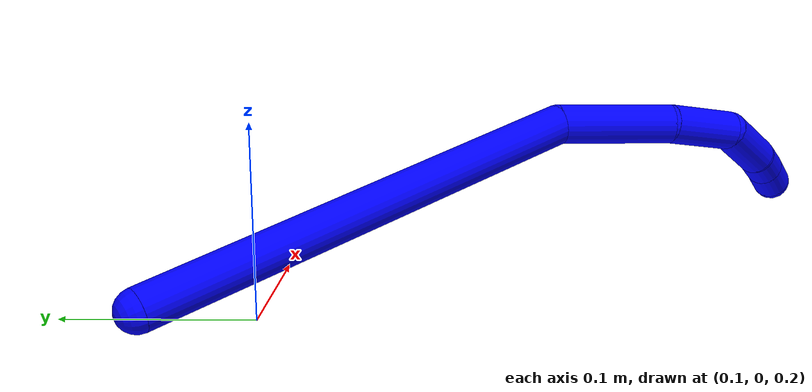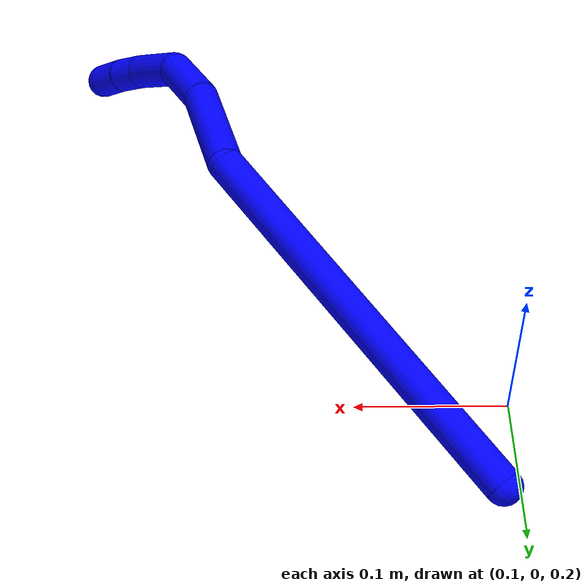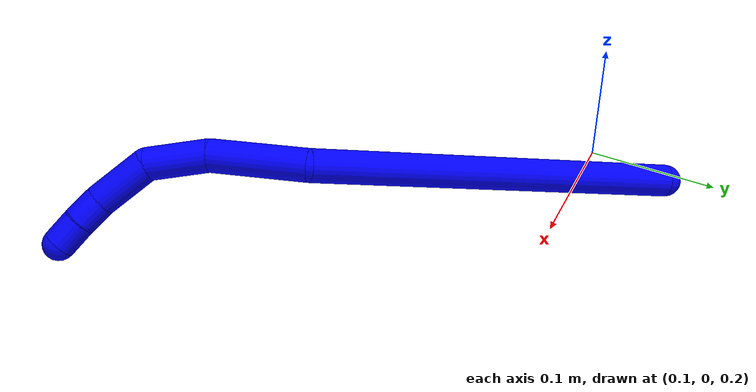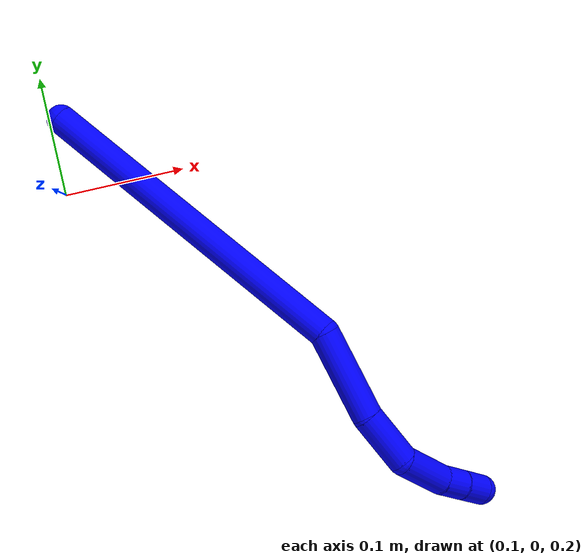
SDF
<sdf version="1.7">
 <world name="default">
  <plugin name="TubeGeneratorPlugin" filename="libtube_generator_plugin.so"/>
  <model name="photoneo_s_sensor">
   <static>1</static>
   <pose>0 0 2 1.57079 1.57079 3.14159</pose>
   <link name="link">
    <inertial><mass>0.1</mass></inertial>
    <sensor name="sensor" type="depth">
     <update_rate>30</update_rate>
     <camera>
      <horizontal_fov>1.22</horizontal_fov>
      <image><width>1920</width><height>1200</height><format>B8G8R8</format></image>
      <clip><near>0.1</near><far>4</far></clip>
      <depth_camera><output>points</output></depth_camera>
     </camera>
     <plugin name="camera_plugin" filename="libgazebo_ros_depth_camera.so">
      <baseline>0.2</baseline>
      <alwaysOn>1</alwaysOn>
      <updateRate>0.0</updateRate>
      <cameraName>camera_ir</cameraName>
      <imageTopicName>/camera/color/image_raw</imageTopicName>
      <cameraInfoTopicName>/camera/color/camera_info</cameraInfoTopicName>
      <depthImageTopicName>/camera/depth/image_raw</depthImageTopicName>
      <depthImageCameraInfoTopicName>/camera/depth/camera_info</depthImageCameraInfoTopicName>
      <pointCloudTopicName>/camera/depth/points</pointCloudTopicName>
      <frameName>fr_optical</frameName>
      <pointCloudCutoff>0.1</pointCloudCutoff>
      <pointCloudCutoffMax>2.0</pointCloudCutoffMax>
      <distortionK1>0</distortionK1>
      <distortionK2>0</distortionK2>
      <distortionK3>0</distortionK3>
      <distortionT1>0</distortionT1>
      <distortionT2>0</distortionT2>
      <CxPrime>0</CxPrime>
      <Cx>0</Cx>
      <Cy>0</Cy>
      <focalLength>0</focalLength>
      <hackBaseline>0</hackBaseline>
     </plugin>
    </sensor>
   </link>
  </model>
  <gravity>0 0 -9.8</gravity>
  <magnetic_field>6e-06 2.3e-05 -4.2e-05</magnetic_field>
  <atmosphere type="adiabatic"/>
  <physics name="default_physics" default="0" type="ode">
   <max_step_size>0.003</max_step_size>
   <real_time_factor>1</real_time_factor>
   <real_time_update_rate>1000</real_time_update_rate>
   <max_contacts>10000</max_contacts>
   <ode>
    <solver>
     <type>quick</type>
     <iters>100</iters>
     <sor>1.3</sor>
     <use_dynamic_moi_rescaling>0</use_dynamic_moi_rescaling>
    </solver>
    <constraints>
     <contact_max_correcting_vel>0</contact_max_correcting_vel>
     <contact_surface_layer>0.001</contact_surface_layer>
     <cfm>0</cfm>
     <erp>0.2</erp>
    </constraints>
   </ode>
  </physics>
  <scene><ambient>0.4 0.4 0.4 1</ambient><background>0.7 0.7 0.7 1</background><shadows>0</shadows></scene>
  <audio><device>default</device></audio>
  <spherical_coordinates>
   <surface_model>EARTH_WGS84</surface_model>
   <latitude_deg>0</latitude_deg>
   <longitude_deg>0</longitude_deg>
   <elevation>0</elevation>
   <heading_deg>0</heading_deg>
  </spherical_coordinates>
  <model name="bin">
   <static>1</static>
   <link name="bottom">
    <collision name="collision-bottom">
     <pose>0 0 -0.01 0 -0 0</pose>
     <geometry><box><size>0.8 0.6 0.02</size></box></geometry>
     <surface>
      <friction><ode><mu>100</mu><mu2>100</mu2></ode></friction>
      <contact><collide_bitmask>65535</collide_bitmask></contact>
     </surface>
    </collision>
   </link>
   <link name="west_wall">
    <collision name="collision-west_wall">
     <pose>-0.41 0 0.1 0 -0 0</pose>
     <geometry><box><size>0.02 0.6 0.2</size></box></geometry>
     <surface>
      <friction><ode><mu>100</mu><mu2>100</mu2></ode></friction>
      <contact><collide_bitmask>65535</collide_bitmask></contact>
     </surface>
    </collision>
   </link>
   <link name="east_wall">
    <collision name="collision-east_wall">
     <pose>0.41 0 0.1 0 -0 0</pose>
     <geometry><box><size>0.02 0.6 0.2</size></box></geometry>
     <surface>
      <friction><ode><mu>100</mu><mu2>100</mu2></ode></friction>
      <contact><collide_bitmask>65535</collide_bitmask></contact>
     </surface>
    </collision>
   </link>
   <link name="south_wall">
    <collision name="collision-south_wall">
     <pose>0 -0.31 0.1 0 -0 0</pose>
     <geometry><box><size>0.8 0.02 0.2</size></box></geometry>
     <surface>
      <friction><ode><mu>100</mu><mu2>100</mu2></ode></friction>
      <contact><collide_bitmask>65535</collide_bitmask></contact>
     </surface>
    </collision>
   </link>
   <link name="north_wall">
    <collision name="collision-north_wall">
     <pose>0 0.31 0.1 0 -0 0</pose>
     <geometry><box><size>0.8 0.02 0.2</size></box></geometry>
     <surface>
      <friction><ode><mu>100</mu><mu2>100</mu2></ode></friction>
      <contact><collide_bitmask>65535</collide_bitmask></contact>
     </surface>
    </collision>
   </link>
  </model>
  <model name="1">
   <static>0</static>
   <link name="1">
    <collision name="collision-cylinder-e_1_1_4">
     <pose>0.006926 0.001503 0.144536 -0.010402 0.047882 -0.000249</pose>
     <geometry><cylinder><radius>0.0125</radius><length>0.289419</length></cylinder></geometry>
     <surface>
      <friction><ode><mu>1.16</mu><mu2>1.16</mu2><slip1>0</slip1><slip2>0</slip2></ode></friction>
      <contact><ode><kp>1e+06</kp><kd>1</kd><max_vel>0</max_vel><min_depth>0.001</min_depth></ode></contact>
     </surface>
    </collision>
    <visual name="visual-cylinder-e_1_1_4">
     <pose>0.006926 0.001503 0.144536 -0.010402 0.047882 -0.000249</pose>
     <geometry><cylinder><radius>0.0125</radius><length>0.289419</length></cylinder></geometry>
     <material><ambient>0 0 1 1</ambient></material>
    </visual>
    <collision name="collision-cylinder-e_2_4_5">
     <pose>0.00867 -0.013045 0.322692 0.445437 -0.13823 -0.031353</pose>
     <geometry><cylinder><radius>0.0125</radius><length>0.07523</length></cylinder></geometry>
     <surface>
      <friction><ode><mu>1.16</mu><mu2>1.16</mu2><slip1>0</slip1><slip2>0</slip2></ode></friction>
      <contact><ode><kp>1e+06</kp><kd>1</kd><max_vel>0</max_vel><min_depth>0.001</min_depth></ode></contact>
     </surface>
    </collision>
    <visual name="visual-cylinder-e_2_4_5">
     <pose>0.00867 -0.013045 0.322692 0.445437 -0.13823 -0.031353</pose>
     <geometry><cylinder><radius>0.0125</radius><length>0.07523</length></cylinder></geometry>
     <material><ambient>0 0 1 1</ambient></material>
    </visual>
    <collision name="collision-cylinder-e_3_5_6">
     <pose>0.005949 -0.03905 0.377562 0.438043 0.10454 0.02329</pose>
     <geometry><cylinder><radius>0.0125</radius><length>0.047186</length></cylinder></geometry>
     <surface>
      <friction><ode><mu>1.16</mu><mu2>1.16</mu2><slip1>0</slip1><slip2>0</slip2></ode></friction>
      <contact><ode><kp>1e+06</kp><kd>1</kd><max_vel>0</max_vel><min_depth>0.001</min_depth></ode></contact>
     </surface>
    </collision>
    <visual name="visual-cylinder-e_3_5_6">
     <pose>0.005949 -0.03905 0.377562 0.438043 0.10454 0.02329</pose>
     <geometry><cylinder><radius>0.0125</radius><length>0.047186</length></cylinder></geometry>
     <material><ambient>0 0 1 1</ambient></material>
    </visual>
    <collision name="collision-cylinder-e_4_6_7">
     <pose>0.020805 -0.059261 0.413721 0.602668 0.600455 0.191847</pose>
     <geometry><cylinder><radius>0.0125</radius><length>0.043872</length></cylinder></geometry>
     <surface>
      <friction><ode><mu>1.16</mu><mu2>1.16</mu2><slip1>0</slip1><slip2>0</slip2></ode></friction>
      <contact><ode><kp>1e+06</kp><kd>1</kd><max_vel>0</max_vel><min_depth>0.001</min_depth></ode></contact>
     </surface>
    </collision>
    <visual name="visual-cylinder-e_4_6_7">
     <pose>0.020805 -0.059261 0.413721 0.602668 0.600455 0.191847</pose>
     <geometry><cylinder><radius>0.0125</radius><length>0.043872</length></cylinder></geometry>
     <material><ambient>0 0 1 1</ambient></material>
    </visual>
    <collision name="collision-cylinder-e_5_7_8">
     <pose>0.040758 -0.073414 0.435437 0.519566 0.767061 0.213682</pose>
     <geometry><cylinder><radius>0.0125</radius><length>0.021783</length></cylinder></geometry>
     <surface>
      <friction><ode><mu>1.16</mu><mu2>1.16</mu2><slip1>0</slip1><slip2>0</slip2></ode></friction>
      <contact><ode><kp>1e+06</kp><kd>1</kd><max_vel>0</max_vel><min_depth>0.001</min_depth></ode></contact>
     </surface>
    </collision>
    <visual name="visual-cylinder-e_5_7_8">
     <pose>0.040758 -0.073414 0.435437 0.519566 0.767061 0.213682</pose>
     <geometry><cylinder><radius>0.0125</radius><length>0.021783</length></cylinder></geometry>
     <material><ambient>0 0 1 1</ambient></material>
    </visual>
    <collision name="collision-cylinder-e_6_8_2">
     <pose>0.05626 -0.082079 0.448633 0.641501 0.783415 0.272747</pose>
     <geometry><cylinder><radius>0.0125</radius><length>0.022511</length></cylinder></geometry>
     <surface>
      <friction><ode><mu>1.16</mu><mu2>1.16</mu2><slip1>0</slip1><slip2>0</slip2></ode></friction>
      <contact><ode><kp>1e+06</kp><kd>1</kd><max_vel>0</max_vel><min_depth>0.001</min_depth></ode></contact>
     </surface>
    </collision>
    <visual name="visual-cylinder-e_6_8_2">
     <pose>0.05626 -0.082079 0.448633 0.641501 0.783415 0.272747</pose>
     <geometry><cylinder><radius>0.0125</radius><length>0.022511</length></cylinder></geometry>
     <material><ambient>0 0 1 1</ambient></material>
    </visual>
    <collision name="collision-sphere-2">
     <pose>0.064203 -0.086851 0.455022 0 -0 0</pose>
     <geometry><sphere><radius>0.0125</radius></sphere></geometry>
     <surface>
      <friction><ode><mu>1.16</mu><mu2>1.16</mu2><slip1>0</slip1><slip2>0</slip2></ode></friction>
      <contact><ode><kp>1e+06</kp><kd>1</kd><max_vel>0</max_vel><min_depth>0.001</min_depth></ode></contact>
     </surface>
    </collision>
    <visual name="visual-sphere-2">
     <pose>0.064203 -0.086851 0.455022 0 -0 0</pose>
     <geometry><sphere><radius>0.0125</radius></sphere></geometry>
     <material><ambient>0 0 1 1</ambient></material>
    </visual>
    <collision name="collision-sphere-4">
     <pose>0.013853 0.003007 0.289072 0 -0 0</pose>
     <geometry><sphere><radius>0.0125</radius></sphere></geometry>
     <surface>
      <friction><ode><mu>1.16</mu><mu2>1.16</mu2><slip1>0</slip1><slip2>0</slip2></ode></friction>
      <contact><ode><kp>1e+06</kp><kd>1</kd><max_vel>0</max_vel><min_depth>0.001</min_depth></ode></contact>
     </surface>
    </collision>
    <visual name="visual-sphere-4">
     <pose>0.013853 0.003007 0.289072 0 -0 0</pose>
     <geometry><sphere><radius>0.0125</radius></sphere></geometry>
     <material><ambient>0 0 1 1</ambient></material>
    </visual>
    <collision name="collision-sphere-1">
     <geometry><sphere><radius>0.0125</radius></sphere></geometry>
     <surface>
      <friction><ode><mu>1.16</mu><mu2>1.16</mu2><slip1>0</slip1><slip2>0</slip2></ode></friction>
      <contact><ode><kp>1e+06</kp><kd>1</kd><max_vel>0</max_vel><min_depth>0.001</min_depth></ode></contact>
     </surface>
    </collision>
    <visual name="visual-sphere-1">
     <geometry><sphere><radius>0.0125</radius></sphere></geometry>
     <material><ambient>0 0 1 1</ambient></material>
    </visual>
    <collision name="collision-sphere-8">
     <pose>0.048317 -0.077307 0.442244 0 -0 0</pose>
     <geometry><sphere><radius>0.0125</radius></sphere></geometry>
     <surface>
      <friction><ode><mu>1.16</mu><mu2>1.16</mu2><slip1>0</slip1><slip2>0</slip2></ode></friction>
      <contact><ode><kp>1e+06</kp><kd>1</kd><max_vel>0</max_vel><min_depth>0.001</min_depth></ode></contact>
     </surface>
    </collision>
    <visual name="visual-sphere-8">
     <pose>0.048317 -0.077307 0.442244 0 -0 0</pose>
     <geometry><sphere><radius>0.0125</radius></sphere></geometry>
     <material><ambient>0 0 1 1</ambient></material>
    </visual>
    <collision name="collision-sphere-5">
     <pose>0.003487 -0.029097 0.356313 0 -0 0</pose>
     <geometry><sphere><radius>0.0125</radius></sphere></geometry>
     <surface>
      <friction><ode><mu>1.16</mu><mu2>1.16</mu2><slip1>0</slip1><slip2>0</slip2></ode></friction>
      <contact><ode><kp>1e+06</kp><kd>1</kd><max_vel>0</max_vel><min_depth>0.001</min_depth></ode></contact>
     </surface>
    </collision>
    <visual name="visual-sphere-5">
     <pose>0.003487 -0.029097 0.356313 0 -0 0</pose>
     <geometry><sphere><radius>0.0125</radius></sphere></geometry>
     <material><ambient>0 0 1 1</ambient></material>
    </visual>
    <collision name="collision-sphere-6">
     <pose>0.008411 -0.049002 0.39881 0 -0 0</pose>
     <geometry><sphere><radius>0.0125</radius></sphere></geometry>
     <surface>
      <friction><ode><mu>1.16</mu><mu2>1.16</mu2><slip1>0</slip1><slip2>0</slip2></ode></friction>
      <contact><ode><kp>1e+06</kp><kd>1</kd><max_vel>0</max_vel><min_depth>0.001</min_depth></ode></contact>
     </surface>
    </collision>
    <visual name="visual-sphere-6">
     <pose>0.008411 -0.049002 0.39881 0 -0 0</pose>
     <geometry><sphere><radius>0.0125</radius></sphere></geometry>
     <material><ambient>0 0 1 1</ambient></material>
    </visual>
    <collision name="collision-sphere-7">
     <pose>0.033199 -0.069521 0.428631 0 -0 0</pose>
     <geometry><sphere><radius>0.0125</radius></sphere></geometry>
     <surface>
      <friction><ode><mu>1.16</mu><mu2>1.16</mu2><slip1>0</slip1><slip2>0</slip2></ode></friction>
      <contact><ode><kp>1e+06</kp><kd>1</kd><max_vel>0</max_vel><min_depth>0.001</min_depth></ode></contact>
     </surface>
    </collision>
    <visual name="visual-sphere-7">
     <pose>0.033199 -0.069521 0.428631 0 -0 0</pose>
     <geometry><sphere><radius>0.0125</radius></sphere></geometry>
     <material><ambient>0 0 1 1</ambient></material>
    </visual>
    <inertial>
     <pose>0.012009 -0.016871 0.243316 0 -0 0</pose>
     <mass>0.5</mass>
     <inertia><ixx>0.002093</ixx><ixy>0</ixy><ixz>0</ixz><iyy>0.00208</iyy><iyz>0</iyz><izz>-6e-05</izz></inertia>
    </inertial>
   </link>
   <pose>0.11011 0.063025 0.201509 1.26272 0.592041 0.441595</pose>
  </model>
 </world>
</sdf>
